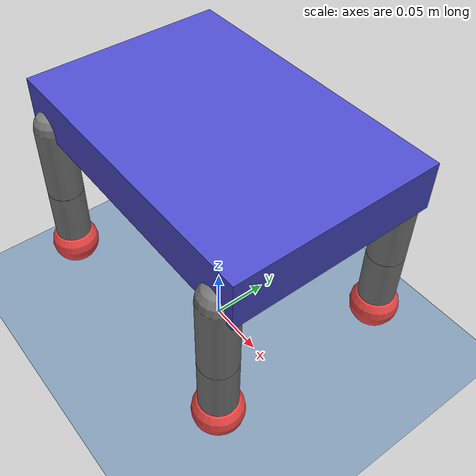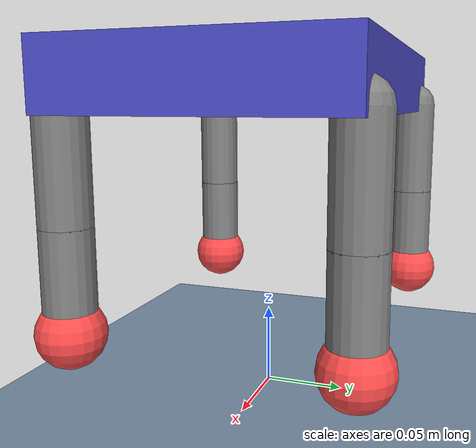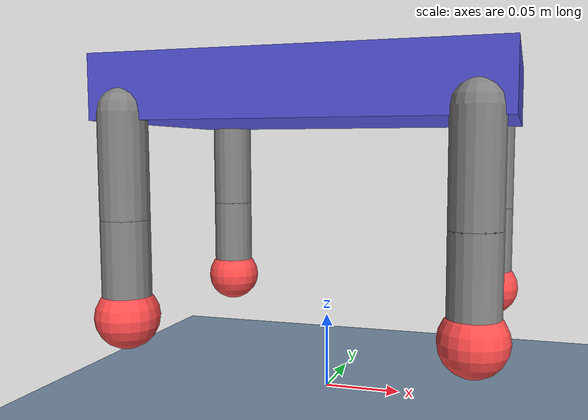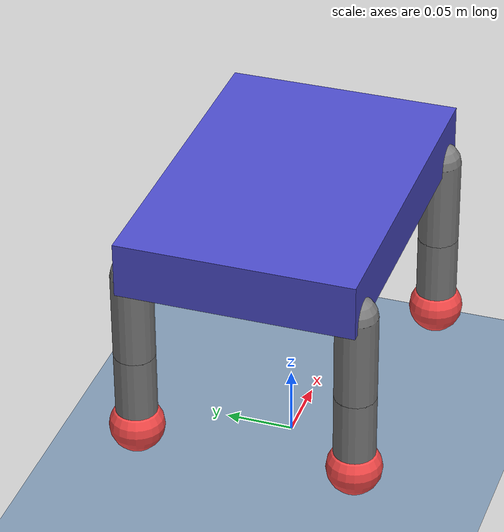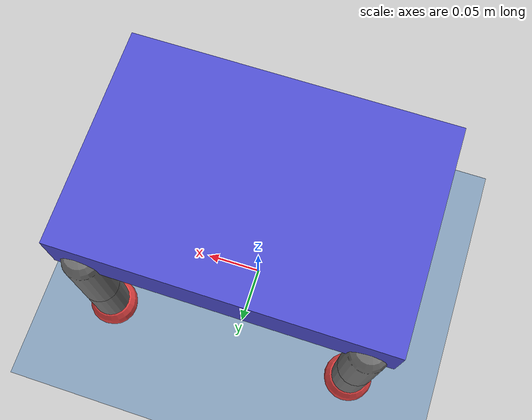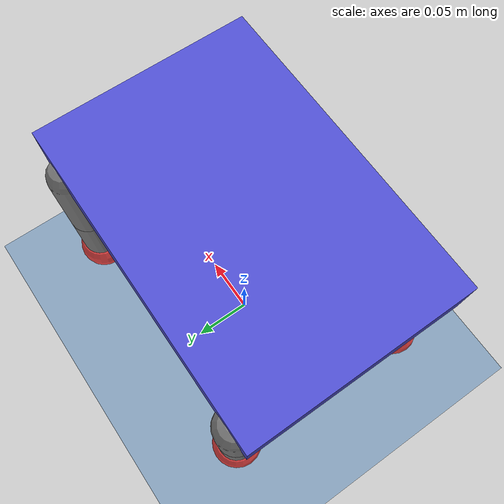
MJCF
<mujoco model="bittle_mujoco">
    <compiler angle="radian" coordinate="local" />
    <option timestep="0.002" gravity="0 0 -9.81" />
    <!-- Physics timestep -->
    <!--
    0.01 -> 100 Hz
    0.002 -> 500 Hz
    0.001 -> 1000 Hz
    -->

    <default>
        <joint damping="2" armature="0.01" />
        <geom friction="0.8 0.1 0.1" density="1000" />
        <motor ctrllimited="true" ctrlrange="-120 120" />
    </default>

    <asset>
        <texture name="checker" type="2d" builtin="checker"
             rgb1="0.2 0.3 0.4"
             rgb2="0.8 0.9 1.0"
             width="512" height="512"/>

        <material name="checker_mat" texture="checker"
                texrepeat="10 10"
                texuniform="true"/>
    </asset>

    <worldbody>
        <!-- Ground plane -->
        <geom
            name="ground"
            type="plane"
            pos="0 0 0"
            size="10 10 0.1"

            material="checker_mat"
            friction="2 0.005 0.0001"
        />

        <!-- Main body -->
        <body name="torso" pos="0 0 0.2">
            <geom type="box" size="0.125 0.085 0.02" rgba="0.3 0.3 0.8 1" />

            <freejoint />

            <!-- IMU site -->
            <site name="imu" pos="0 0 0" size="0.01" />

            <!-- Front Left Leg -->
            <body name="front_left_hip" pos="0.105 0.08 -0.015">
                <joint name="front_left_hip_joint" axis="0 1 0" range="-1.0472 1.0472"/>

                <!-- [UPPER LEG LENGTH] -->
                <geom type="capsule" fromto="0 0 0 0 0 -0.065" size="0.015"/>

                <body name="front_left_knee" pos="0 0 -0.065">
                    <joint name="front_left_knee_joint" axis="0 1 0" range="-1.0472 1.0472"/>

                    <geom name="front_left_lower" type="capsule" fromto="0 0 0 0 0 -0.06" size="0.015"/>

                    <geom rgba="1 0.3 0.3 1" name="front_left_foot" type="sphere" pos="0 0 -0.06" size="0.02"/>
                    <site name="front_left_foot_site" pos="0 0 -0.075" size="0.005"/>
                </body>
            </body>

            <!-- Front Right Leg -->
            <body name="front_right_hip" pos="0.105 -0.08 -0.015">
                <joint name="front_right_hip_joint" axis="0 1 0" range="-1.0472 1.0472"/>

                <!-- [UPPER LEG LENGTH] -->
                <geom type="capsule" fromto="0 0 0 0 0 -0.065" size="0.015"/>

                <body name="front_right_knee" pos="0 0 -0.065">
                    <joint name="front_right_knee_joint" axis="0 1 0" range="-1.0472 1.0472"/>

                    <geom name="front_right_lower" type="capsule" fromto="0 0 0 0 0 -0.06" size="0.015"/>

                    <geom rgba="1 0.3 0.3 1" name="front_right_foot" type="sphere" pos="0 0 -0.06" size="0.02"/>
                    <site name="front_right_foot_site" pos="0 0 -0.075" size="0.005"/>
                </body>
            </body>

            <!-- Back Left Leg -->
            <body name="back_left_hip" pos="-0.105 0.08 -0.015">
                <joint name="back_left_hip_joint" axis="0 1 0" range="-1.0472 1.0472"/>

                <!-- [UPPER LEG LENGTH] -->
                <geom type="capsule" fromto="0 0 0 0 0 -0.065" size="0.015"/>

                <body name="back_left_knee" pos="0 0 -0.065">
                    <joint name="back_left_knee_joint" axis="0 1 0" range="-1.0472 1.0472"/>

                    <geom name="back_left_lower" type="capsule" fromto="0 0 0 0 0 -0.06" size="0.015"/>

                    <geom rgba="1 0.3 0.3 1" name="back_left_foot" type="sphere" pos="0 0 -0.06" size="0.02"/>
                    <site name="back_left_foot_site" pos="0 0 -0.075" size="0.005"/>
                </body>
            </body>

            <!-- Back Right Leg -->
            <body name="back_right_hip" pos="-0.105 -0.08 -0.015">
                <joint name="back_right_hip_joint" axis="0 1 0" range="-1.0472 1.0472"/>

                <!-- [UPPER LEG LENGTH] -->
                <geom type="capsule" fromto="0 0 0 0 0 -0.065" size="0.015"/>

                <body name="back_right_knee" pos="0 0 -0.065">
                    <joint name="back_right_knee_joint" axis="0 1 0" range="-1.0472 1.0472"/>

                    <geom name="back_right_lower" type="capsule" fromto="0 0 0 0 0 -0.06" size="0.015"/>

                    <geom rgba="1 0.3 0.3 1" name="back_right_foot" type="sphere" pos="0 0 -0.06" size="0.02"/>
                    <site name="back_right_foot_site" pos="0 0 -0.075" size="0.005"/>
                </body>
            </body>
        </body>
    </worldbody>

    <!-- Servo actuators -->
    <actuator>
        <position joint="front_left_hip_joint" kp="40" />
        <position joint="front_left_knee_joint" kp="40" />

        <position joint="front_right_hip_joint" kp="40" />
        <position joint="front_right_knee_joint" kp="40" />

        <position joint="back_left_hip_joint" kp="40" />
        <position joint="back_left_knee_joint" kp="40" />

        <position joint="back_right_hip_joint" kp="40" />
        <position joint="back_right_knee_joint" kp="40" />
    </actuator>

    <!-- Sensors -->
    <sensor>
        <!-- IMU Orientation -->
        <framequat objtype="site" objname="imu" name="imu_quat" />

        <!-- angular velocity -->
        <gyro site="imu" name="imu_gyro" />

        <!-- linear acceleration -->
        <accelerometer site="imu" name="imu_accel" />

    </sensor>

</mujoco>
